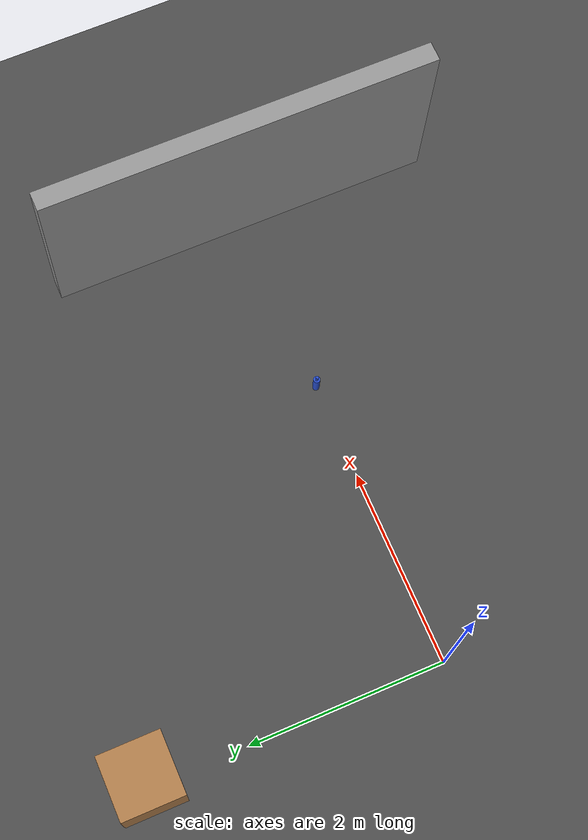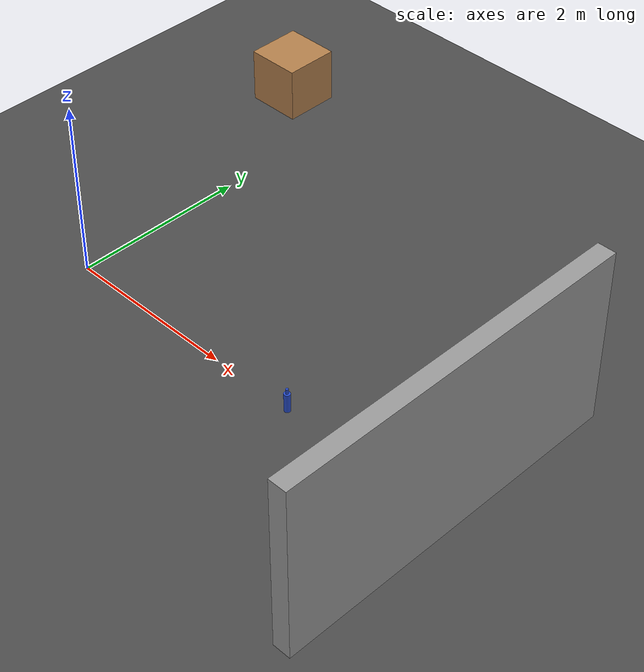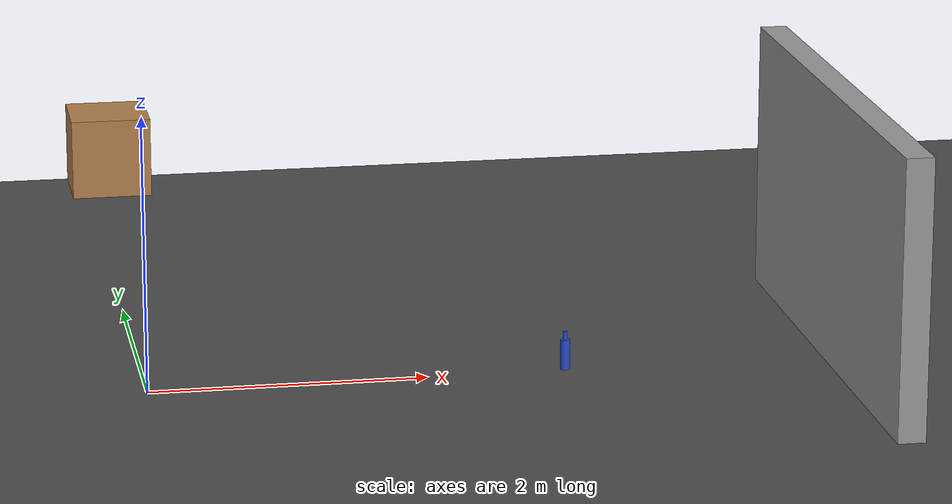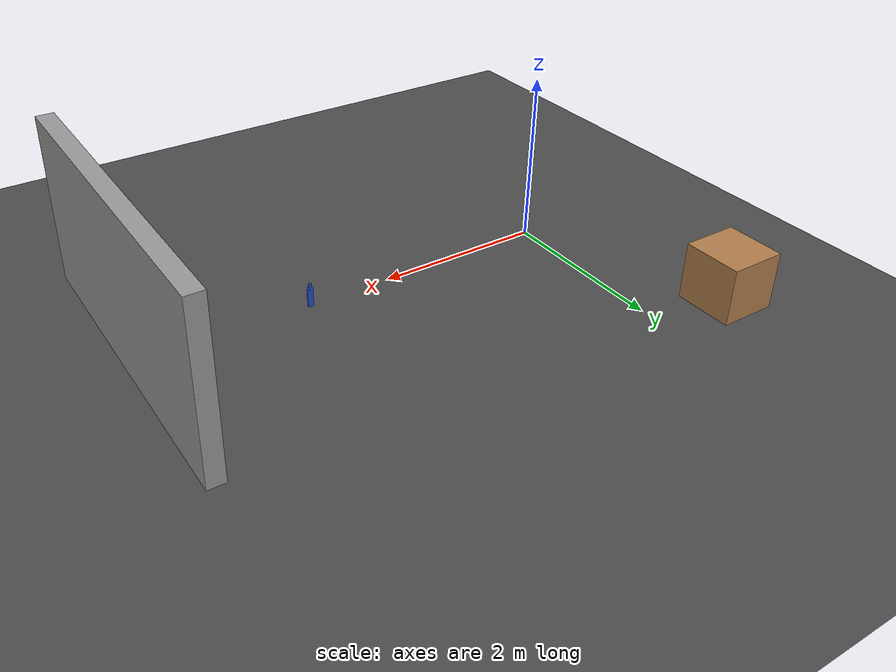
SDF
<?xml version="1.0" ?>
<sdf version="1.6">
  <world name="plane_with_objects">

    <!-- 全局光照设置 -->
    <light type="directional" name="sun">
      <cast_shadows>true</cast_shadows>
      <pose>0 0 10 0 0 0</pose>
      <diffuse>0.8 0.8 0.8 1</diffuse>
      <specular>0.2 0.2 0.2 1</specular>
      <attenuation>
        <range>1000</range>
        <constant>0.9</constant>
        <linear>0.01</linear>
        <quadratic>0.001</quadratic>
      </attenuation>
      <direction>-0.5 0.1 -0.9</direction>
    </light>

    <!-- 环境光 -->
    <light type="ambient" name="ambient_light">
      <color>0.4 0.4 0.4 1</color>
    </light>

    <!-- 地面平面 -->
    <model name="ground_plane">
      <static>true</static>
      <link name="link">
        <collision name="collision">
          <geometry>
            <plane>
              <normal>0 0 1</normal>
              <size>20 20</size>
            </plane>
          </geometry>
          <surface>
            <friction>
              <ode>
                <mu>100</mu>
                <mu2>50</mu2>
              </ode>
            </friction>
          </surface>
        </collision>
        <visual name="visual">
          <geometry>
            <plane>
              <normal>0 0 1</normal>
              <size>20 20</size>
            </plane>
          </geometry>
          <material>
            <script>
              <uri>file://media/materials/scripts/gazebo.material</uri>
              <name>Gazebo/Road</name>
            </script>
          </material>
        </visual>
      </link>
    </model>

    <!-- 瓶子模型 - 更真实的形状 -->
    <model name="bottle">
      <pose>3 0 0 0 0 0</pose>
      <static>false</static>

      <!-- 瓶身 -->
      <link name="bottle_body">
        <pose>0 0 0.12 0 0 0</pose>
        <inertial>
          <mass>0.4</mass>
          <inertia>
            <ixx>0.002</ixx>
            <ixy>0</ixy>
            <ixz>0</ixz>
            <iyy>0.002</iyy>
            <iyz>0</iyz>
            <izz>0.0008</izz>
          </inertia>
        </inertial>
        <collision name="collision">
          <geometry>
            <cylinder>
              <radius>0.035</radius>
              <length>0.22</length>
            </cylinder>
          </geometry>
        </collision>
        <visual name="visual">
          <geometry>
            <cylinder>
              <radius>0.035</radius>
              <length>0.22</length>
            </cylinder>
          </geometry>
          <material>
            <script>
              <uri>file://media/materials/scripts/gazebo.material</uri>
              <name>Gazebo/Blue</name>
            </script>
          </material>
        </visual>
      </link>

      <!-- 瓶颈 -->
      <link name="bottle_neck">
        <pose>0 0 0.26 0 0 0</pose>
        <inertial>
          <mass>0.08</mass>
          <inertia>
            <ixx>0.0002</ixx>
            <ixy>0</ixy>
            <ixz>0</ixz>
            <iyy>0.0002</iyy>
            <iyz>0</iyz>
            <izz>0.00005</izz>
          </inertia>
        </inertial>
        <collision name="collision">
          <geometry>
            <cylinder>
              <radius>0.015</radius>
              <length>0.06</length>
            </cylinder>
          </geometry>
        </collision>
        <visual name="visual">
          <geometry>
            <cylinder>
              <radius>0.015</radius>
              <length>0.06</length>
            </cylinder>
          </geometry>
          <material>
            <script>
              <uri>file://media/materials/scripts/gazebo.material</uri>
              <name>Gazebo/Blue</name>
            </script>
          </material>
        </visual>
      </link>

      <!-- 连接瓶身和瓶颈 -->
      <joint name="body_neck_joint" type="fixed">
        <parent>bottle_body</parent>
        <child>bottle_neck</child>
        <pose>0 0 0 0 0 0</pose>
      </joint>

    </model>

    <!-- 箱子模型 - 调整到更高的位置 -->
    <model name="box">
      <pose>0 3 1.0 0 0 0</pose>
      <static>false</static>
      <link name="link">
        <inertial>
          <mass>2.0</mass>
          <inertia>
            <ixx>0.083</ixx>
            <ixy>0</ixy>
            <ixz>0</ixz>
            <iyy>0.083</iyy>
            <iyz>0</iyz>
            <izz>0.083</izz>
          </inertia>
        </inertial>
        <collision name="collision">
          <geometry>
            <box>
              <size>0.6 0.6 0.6</size>
            </box>
          </geometry>
        </collision>
        <visual name="visual">
          <geometry>
            <box>
              <size>0.6 0.6 0.6</size>
            </box>
          </geometry>
          <material>
            <script>
              <uri>file://media/materials/scripts/gazebo.material</uri>
              <name>Gazebo/Wood</name>
            </script>
          </material>
        </visual>
      </link>
    </model>

    <!-- 添加墙壁 -->
    <model name="wall1">
      <pose>5 0 1.0 0 0 0</pose>
      <static>true</static>
      <link name="link">
        <collision name="collision">
          <geometry>
            <box>
              <size>0.2 4.0 2.0</size>
            </box>
          </geometry>
        </collision>
        <visual name="visual">
          <geometry>
            <box>
              <size>0.2 4.0 2.0</size>
            </box>
          </geometry>
          <material>
            <script>
              <uri>file://media/materials/scripts/gazebo.material</uri>
              <name>Gazebo/Grey</name>
            </script>
          </material>
        </visual>
      </link>
    </model>

    <!-- 物理引擎设置 -->
    <physics type="ode">
      <max_step_size>0.001</max_step_size>
      <real_time_factor>1</real_time_factor>
      <real_time_update_rate>1000</real_time_update_rate>
      <gravity>0 0 -9.8</gravity>
    </physics>

    <!-- GUI设置 -->
    <gui fullscreen='0'>
      <camera name='user_camera'>
        <pose>5 -5 2 0 0.275643 2.35619</pose>
        <view_controller>orbit</view_controller>
      </camera>
    </gui>

  </world>
</sdf>
